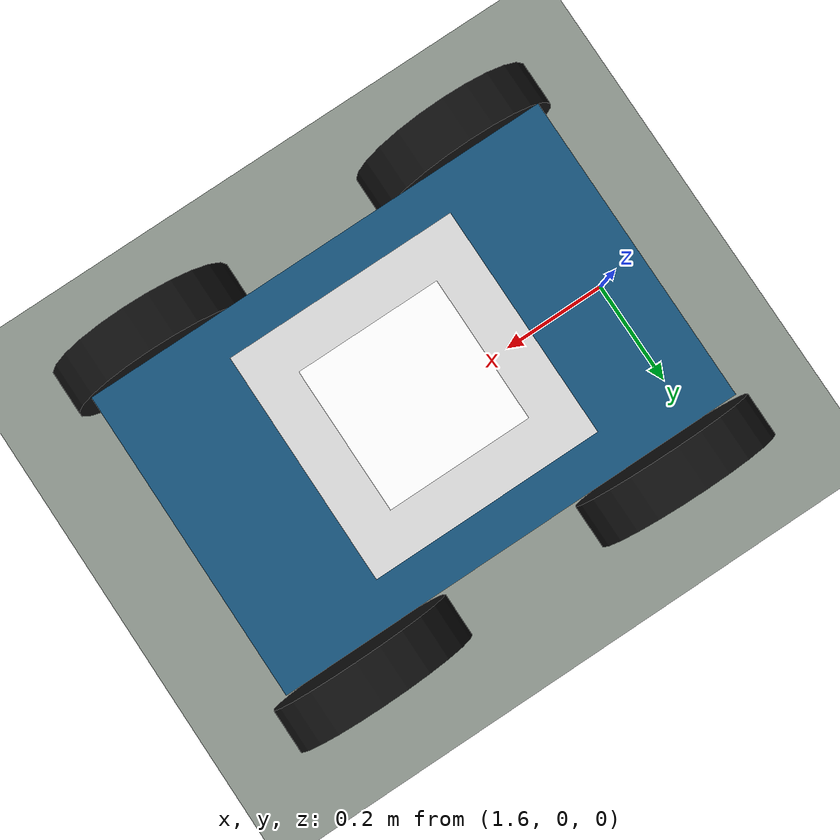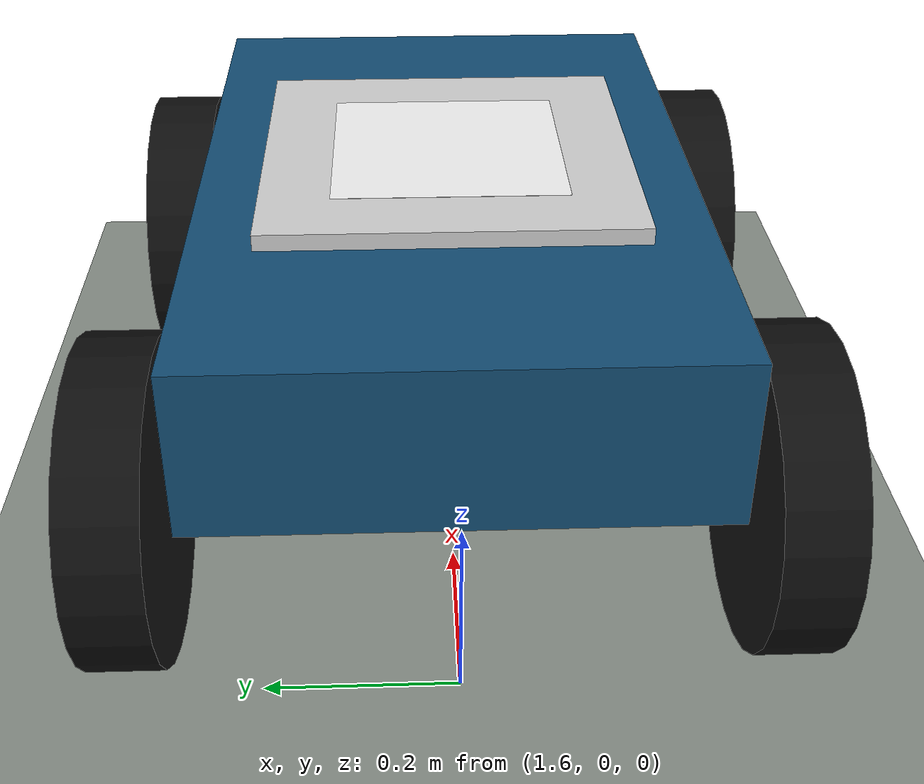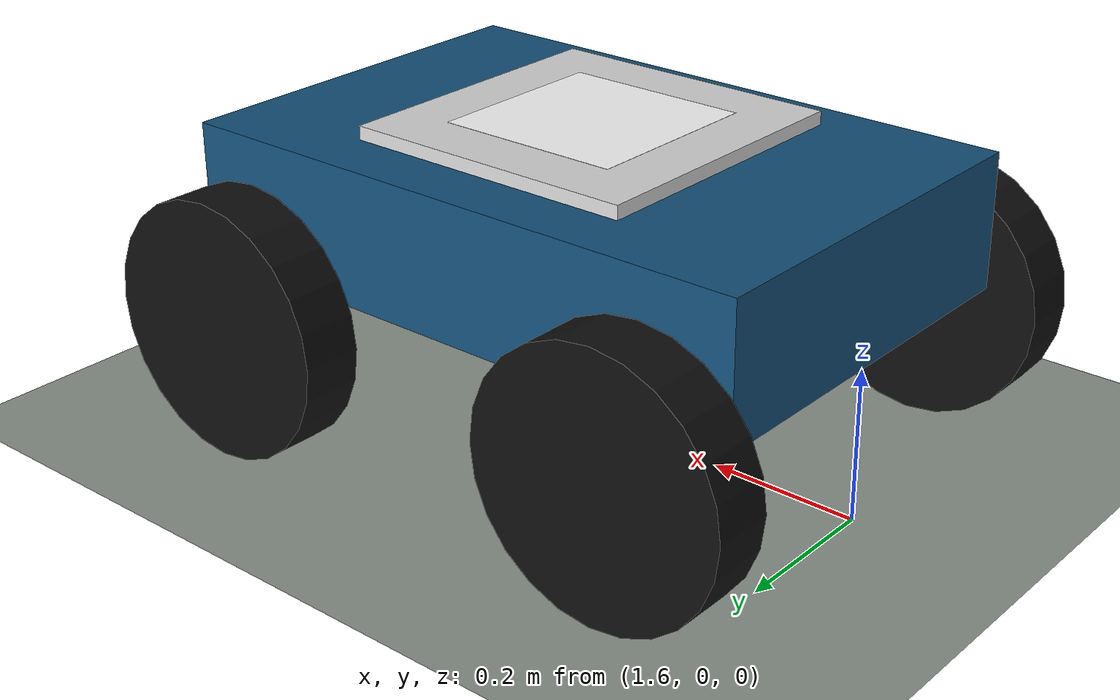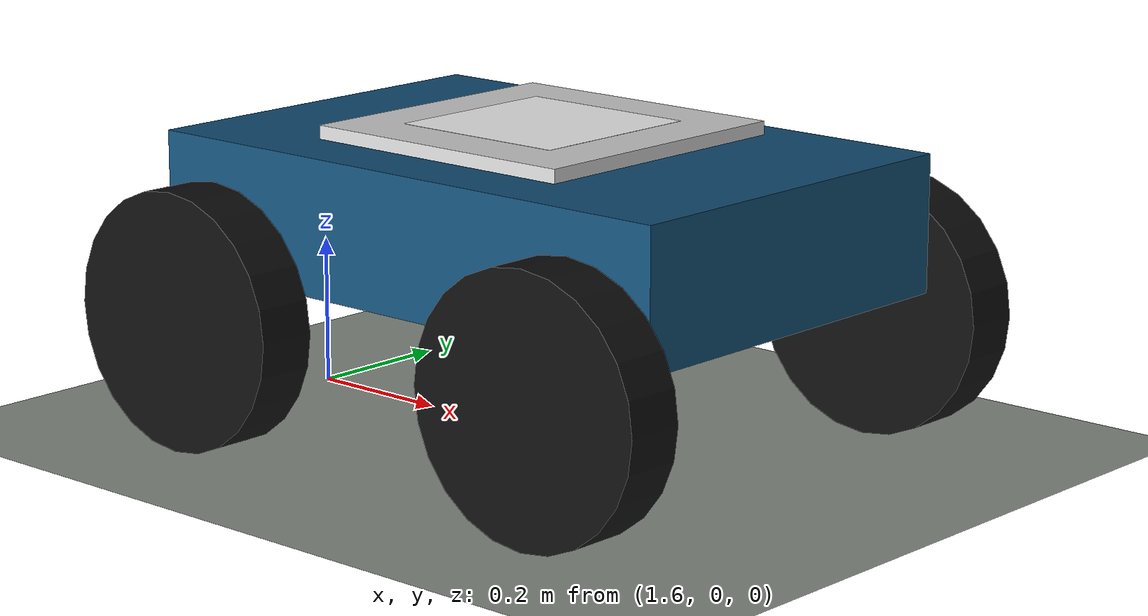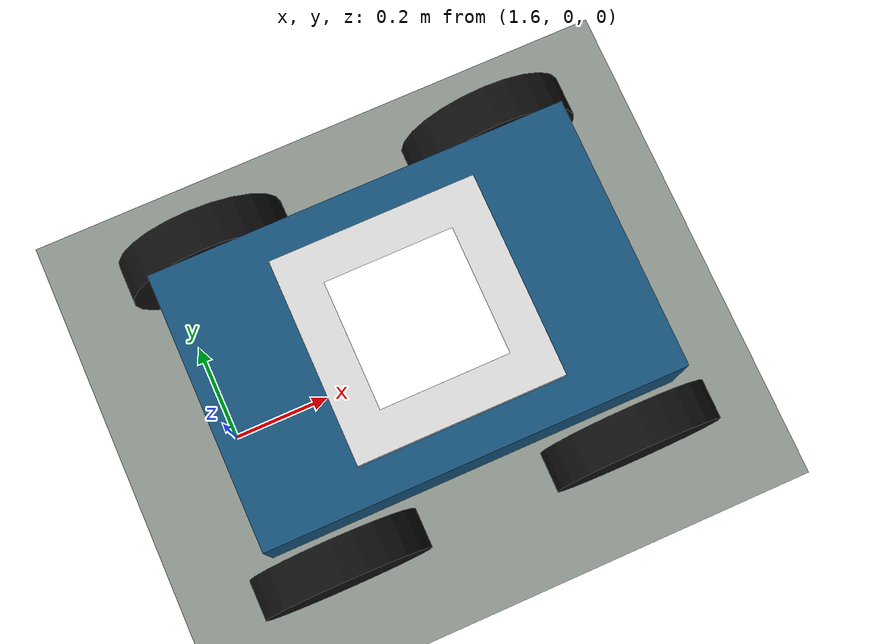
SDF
<sdf version="1.9">
 <world name="air_ground">
  <physics name="1ms" type="ignore">
   <max_step_size>0.001</max_step_size>
   <real_time_factor>1.0</real_time_factor>
  </physics>
  <plugin filename="gz-sim-physics-system" name="gz::sim::systems::Physics"/>
  <plugin filename="gz-sim-sensors-system" name="gz::sim::systems::Sensors">
   <render_engine>ogre2</render_engine>
  </plugin>
  <plugin filename="gz-sim-user-commands-system" name="gz::sim::systems::UserCommands"/>
  <plugin filename="gz-sim-scene-broadcaster-system" name="gz::sim::systems::SceneBroadcaster"/>
  <plugin filename="gz-sim-imu-system" name="gz::sim::systems::Imu"/>
  <plugin filename="gz-sim-navsat-system" name="gz::sim::systems::NavSat"/>
  <plugin filename="gz-sim-magnetometer-system" name="gz::sim::systems::Magnetometer"/>
  <plugin filename="gz-sim-air-pressure-system" name="gz::sim::systems::AirPressure"/>
  <scene><ambient>0.8 0.8 0.8 1</ambient><background>0.65 0.75 0.90 1</background></scene>
  <spherical_coordinates>
   <latitude_deg>22.1350000</latitude_deg>
   <longitude_deg>113.5447296</longitude_deg>
   <elevation>10</elevation>
   <heading_deg>0</heading_deg>
   <surface_model>EARTH_WGS84</surface_model>
  </spherical_coordinates>
  <light type="directional" name="sun">
   <pose>0 0 10 0 0 0</pose>
   <diffuse>0.9 0.9 0.9 1</diffuse>
   <specular>0.2 0.2 0.2 1</specular>
   <direction>-0.5 0.2 -0.9</direction>
  </light>
  <model name="ground_plane">
   <static>true</static>
   <link name="link">
    <collision name="collision">
     <geometry><plane><normal>0 0 1</normal><size>100 100</size></plane></geometry>
    </collision>
    <visual name="visual">
     <geometry><plane><normal>0 0 1</normal><size>100 100</size></plane></geometry>
     <material><ambient>0.45 0.48 0.45 1</ambient><diffuse>0.55 0.58 0.55 1</diffuse></material>
    </visual>
   </link>
  </model>
  <include>
   <uri>model://ground_vehicle</uri>
   <name>ground_vehicle</name>
   <pose>2.0 0 0 0 0 3.14159265359</pose>
  </include>
 </world>
</sdf>

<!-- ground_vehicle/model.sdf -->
<sdf version="1.9">
  <model name="ground_vehicle">
    <pose>0 0 0 0 0 0</pose>

    <link name="base_link">
      <!-- Keep the body collision 40 mm above the ground so the wheels, not
           the chassis belly, carry the vehicle and generate traction. -->
      <pose>0 0 0.30 0 0 0</pose>
      <inertial>
        <mass>18.0</mass>
        <inertia>
          <ixx>0.65</ixx><iyy>1.10</iyy><izz>1.35</izz>
        </inertia>
      </inertial>
      <collision name="body_collision">
        <geometry><box><size>0.82 0.54 0.18</size></box></geometry>
      </collision>
      <visual name="body_visual">
        <geometry><box><size>0.82 0.54 0.18</size></box></geometry>
        <material>
          <ambient>0.05 0.18 0.28 1</ambient>
          <diffuse>0.08 0.32 0.48 1</diffuse>
        </material>
      </visual>
      <visual name="landing_pad">
        <pose>0 0 0.105 0 0 0</pose>
        <geometry><box><size>0.40 0.40 0.018</size></box></geometry>
        <material>
          <ambient>0.75 0.75 0.75 1</ambient>
          <diffuse>0.85 0.85 0.85 1</diffuse>
        </material>
      </visual>
      <!-- Physical target shown in the supplied reference photo:
           tag36h11 ID 0, 200 mm black edge plus a 25 mm white quiet
           border on every side, for a 250 x 250 mm printed board. -->
      <visual name="apriltag_id0">
        <pose>0 0 0.115 0 0 0</pose>
        <geometry><plane><normal>0 0 1</normal><size>0.25 0.25</size></plane></geometry>
        <material>
          <ambient>1 1 1 1</ambient>
          <diffuse>1 1 1 1</diffuse>
          <specular>0 0 0 1</specular>
          <pbr>
            <metal>
              <albedo_map>model://ground_vehicle/materials/textures/tag36h11_id0.png</albedo_map>
              <metalness>0.0</metalness>
              <roughness>1.0</roughness>
            </metal>
          </pbr>
        </material>
      </visual>
    </link>

    <link name="left_front_wheel">
      <pose>0.30 0.33 0.17 1.57079632679 0 0</pose>
      <inertial><mass>1.0</mass><inertia><ixx>0.015</ixx><iyy>0.015</iyy><izz>0.025</izz></inertia></inertial>
      <collision name="collision"><geometry><cylinder><radius>0.17</radius><length>0.08</length></cylinder></geometry><surface><friction><ode><mu>1.2</mu><mu2>1.2</mu2></ode></friction></surface></collision>
      <visual name="visual"><geometry><cylinder><radius>0.17</radius><length>0.08</length></cylinder></geometry><material><ambient>0.03 0.03 0.03 1</ambient><diffuse>0.06 0.06 0.06 1</diffuse></material></visual>
    </link>
    <link name="left_rear_wheel">
      <pose>-0.30 0.33 0.17 1.57079632679 0 0</pose>
      <inertial><mass>1.0</mass><inertia><ixx>0.015</ixx><iyy>0.015</iyy><izz>0.025</izz></inertia></inertial>
      <collision name="collision"><geometry><cylinder><radius>0.17</radius><length>0.08</length></cylinder></geometry><surface><friction><ode><mu>1.2</mu><mu2>1.2</mu2></ode></friction></surface></collision>
      <visual name="visual"><geometry><cylinder><radius>0.17</radius><length>0.08</length></cylinder></geometry><material><ambient>0.03 0.03 0.03 1</ambient><diffuse>0.06 0.06 0.06 1</diffuse></material></visual>
    </link>
    <link name="right_front_wheel">
      <pose>0.30 -0.33 0.17 1.57079632679 0 0</pose>
      <inertial><mass>1.0</mass><inertia><ixx>0.015</ixx><iyy>0.015</iyy><izz>0.025</izz></inertia></inertial>
      <collision name="collision"><geometry><cylinder><radius>0.17</radius><length>0.08</length></cylinder></geometry><surface><friction><ode><mu>1.2</mu><mu2>1.2</mu2></ode></friction></surface></collision>
      <visual name="visual"><geometry><cylinder><radius>0.17</radius><length>0.08</length></cylinder></geometry><material><ambient>0.03 0.03 0.03 1</ambient><diffuse>0.06 0.06 0.06 1</diffuse></material></visual>
    </link>
    <link name="right_rear_wheel">
      <pose>-0.30 -0.33 0.17 1.57079632679 0 0</pose>
      <inertial><mass>1.0</mass><inertia><ixx>0.015</ixx><iyy>0.015</iyy><izz>0.025</izz></inertia></inertial>
      <collision name="collision"><geometry><cylinder><radius>0.17</radius><length>0.08</length></cylinder></geometry><surface><friction><ode><mu>1.2</mu><mu2>1.2</mu2></ode></friction></surface></collision>
      <visual name="visual"><geometry><cylinder><radius>0.17</radius><length>0.08</length></cylinder></geometry><material><ambient>0.03 0.03 0.03 1</ambient><diffuse>0.06 0.06 0.06 1</diffuse></material></visual>
    </link>

    <!-- Joint axes are expressed in each rotated wheel frame.  Local Z is the
         axle direction after the 90-degree wheel-link roll. -->
    <joint name="left_front_joint" type="revolute">
      <parent>base_link</parent><child>left_front_wheel</child>
      <axis><xyz>0 0 1</xyz><limit><lower>-1.0e16</lower><upper>1.0e16</upper></limit></axis>
    </joint>
    <joint name="left_rear_joint" type="revolute">
      <parent>base_link</parent><child>left_rear_wheel</child>
      <axis><xyz>0 0 1</xyz><limit><lower>-1.0e16</lower><upper>1.0e16</upper></limit></axis>
    </joint>
    <joint name="right_front_joint" type="revolute">
      <parent>base_link</parent><child>right_front_wheel</child>
      <axis><xyz>0 0 1</xyz><limit><lower>-1.0e16</lower><upper>1.0e16</upper></limit></axis>
    </joint>
    <joint name="right_rear_joint" type="revolute">
      <parent>base_link</parent><child>right_rear_wheel</child>
      <axis><xyz>0 0 1</xyz><limit><lower>-1.0e16</lower><upper>1.0e16</upper></limit></axis>
    </joint>

    <plugin filename="gz-sim-diff-drive-system" name="gz::sim::systems::DiffDrive">
      <left_joint>left_front_joint</left_joint>
      <left_joint>left_rear_joint</left_joint>
      <right_joint>right_front_joint</right_joint>
      <right_joint>right_rear_joint</right_joint>
      <wheel_separation>0.66</wheel_separation>
      <wheel_radius>0.17</wheel_radius>
      <topic>/model/ground_vehicle/cmd_vel</topic>
      <odom_topic>/model/ground_vehicle/odometry</odom_topic>
      <tf_topic>/model/ground_vehicle/tf</tf_topic>
      <frame_id>odom</frame_id>
      <child_frame_id>ugv_base_link</child_frame_id>
      <odom_publish_frequency>30</odom_publish_frequency>
      <max_linear_acceleration>1.0</max_linear_acceleration>
      <max_angular_acceleration>1.5</max_angular_acceleration>
    </plugin>
  </model>
</sdf>
